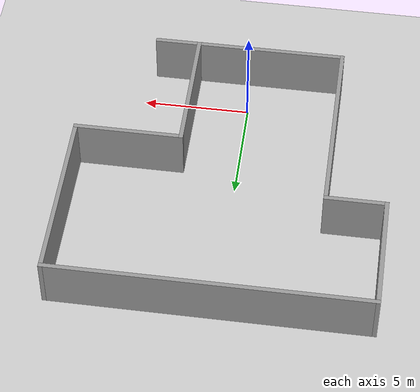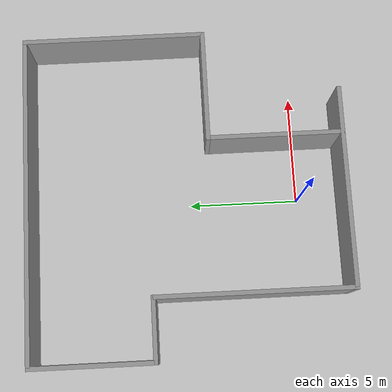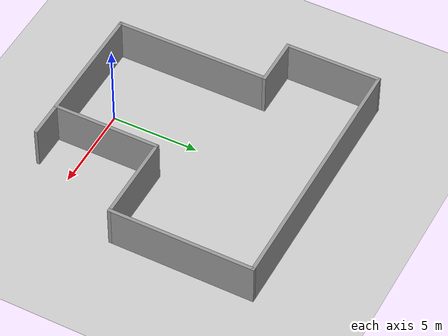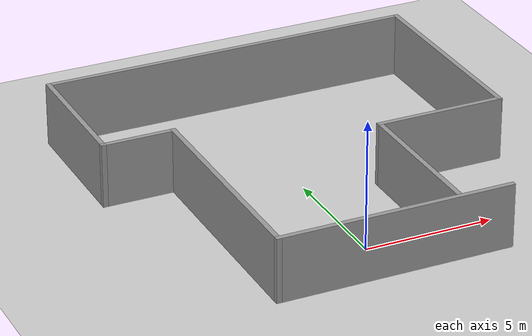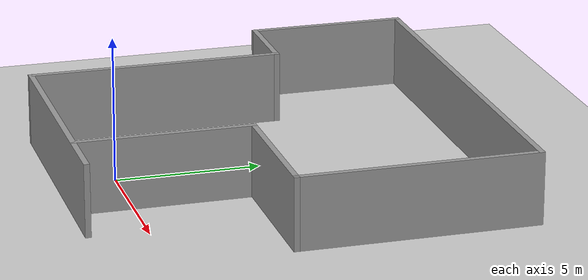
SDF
<?xml version="1.0" ?>
<sdf version='1.4'>
  <world name='default'>
    <model name='ground_plane'>
      <static>1</static>
      <link name='link'>
        <collision name='collision'>
          <geometry>
            <plane>
              <normal>0 0 1</normal>
              <size>100 100</size>
            </plane>
          </geometry>
          <surface>
            <friction>
              <ode>
                <mu>100</mu>
                <mu2>50</mu2>
              </ode>
            </friction>
            <bounce/>
            <contact>
              <ode/>
            </contact>
          </surface>
          <max_contacts>10</max_contacts>
        </collision>
        <visual name='visual'>
          <cast_shadows>0</cast_shadows>
          <geometry>
            <plane>
              <normal>0 0 1</normal>
              <size>100 100</size>
            </plane>
          </geometry>
          <material>
            <script>
              <uri>file://media/materials/scripts/gazebo.material</uri>
              <name>Gazebo/Grey</name>
            </script>
          </material>
        </visual>
        <velocity_decay>
          <linear>0</linear>
          <angular>0</angular>
        </velocity_decay>
        <self_collide>0</self_collide>
        <kinematic>0</kinematic>
        <gravity>1</gravity>
      </link>
    </model>
    <light name='sun' type='directional'>
      <cast_shadows>1</cast_shadows>
      <pose>0 0 10 0 -0 0</pose>
      <diffuse>0.8 0.8 0.8 1</diffuse>
      <specular>0.2 0.2 0.2 1</specular>
      <attenuation>
        <range>1000</range>
        <constant>0.9</constant>
        <linear>0.01</linear>
        <quadratic>0.001</quadratic>
      </attenuation>
      <direction>-0.5 0.1 -0.9</direction>
    </light>
    <physics type='ode'>
      <max_step_size>0.005</max_step_size>
      <real_time_factor>1</real_time_factor>
      <real_time_update_rate>200</real_time_update_rate>
      <gravity>0 0 -9.8</gravity>
    </physics>
    <scene>
      <ambient>0.4 0.4 0.4 1</ambient>
      <background>0.7 0.7 0.7 1</background>
      <shadows>1</shadows>
    </scene>
    <spherical_coordinates>
      <surface_model>EARTH_WGS84</surface_model>
      <latitude_deg>0</latitude_deg>
      <longitude_deg>0</longitude_deg>
      <elevation>0</elevation>
      <heading_deg>0</heading_deg>
    </spherical_coordinates>
    <gui fullscreen='0'>
      <camera name='user_camera'>
        <pose>-2.57767 -2.91132 2.87769 3.10316e-17 0.463643 0.86419</pose>
        <view_controller>orbit</view_controller>
      </camera>
    </gui>

    <include>
      <uri>model://wall4</uri>
    </include>
  </world>
</sdf>

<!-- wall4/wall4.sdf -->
<sdf version='1.4'>
  <model name='wall4'>
    <link name='Wall_31'>
      <collision name='Wall_31_Collision'>
        <geometry>
          <box>
            <size>9.19353 0.2 2.5</size>
          </box>
        </geometry>
        <pose>0 0 1.25 0 -0 0</pose>
      </collision>
      <visual name='Wall_31_Visual'>
        <pose>0 0 1.25 0 -0 0</pose>
        <geometry>
          <box>
            <size>9.19353 0.2 2.5</size>
          </box>
        </geometry>
        <material>
          <script>
            <uri>file://media/materials/scripts/gazebo.material</uri>
            <name>Gazebo/Grey</name>
          </script>
        </material>
      </visual>
      <velocity_decay>
        <linear>0</linear>
        <angular>0</angular>
      </velocity_decay>
      <pose>0.160539 -1.95625 0 0 -0 3.14159</pose>
    </link>
    <link name='Wall_32'>
      <collision name='Wall_32_Collision'>
        <geometry>
          <box>
            <size>9.00999 0.2 2.5</size>
          </box>
        </geometry>
        <pose>0 0 1.25 0 -0 0</pose>
      </collision>
      <visual name='Wall_32_Visual'>
        <pose>0 0 1.25 0 -0 0</pose>
        <geometry>
          <box>
            <size>9.00999 0.2 2.5</size>
          </box>
        </geometry>
        <material>
          <script>
            <uri>file://media/materials/scripts/gazebo.material</uri>
            <name>Gazebo/Grey</name>
          </script>
        </material>
      </visual>
      <velocity_decay>
        <linear>0</linear>
        <angular>0</angular>
      </velocity_decay>
      <pose>-4.33622 2.44874 0 0 -0 1.5708</pose>
    </link>
    <link name='Wall_33'>
      <collision name='Wall_33_Collision'>
        <geometry>
          <box>
            <size>2.95312 0.2 2.5</size>
          </box>
        </geometry>
        <pose>0 0 1.25 0 -0 0</pose>
      </collision>
      <visual name='Wall_33_Visual'>
        <pose>0 0 1.25 0 -0 0</pose>
        <geometry>
          <box>
            <size>2.95312 0.2 2.5</size>
          </box>
        </geometry>
        <material>
          <script>
            <uri>file://media/materials/scripts/gazebo.material</uri>
            <name>Gazebo/Grey</name>
          </script>
        </material>
      </visual>
      <velocity_decay>
        <linear>0</linear>
        <angular>0</angular>
      </velocity_decay>
      <pose>-5.71279 6.85374 0 0 -0 3.14159</pose>
    </link>
    <link name='Wall_34'>
      <collision name='Wall_34_Collision'>
        <geometry>
          <box>
            <size>5.61447 0.2 2.5</size>
          </box>
        </geometry>
        <pose>0 0 1.25 0 -0 0</pose>
      </collision>
      <visual name='Wall_34_Visual'>
        <pose>0 0 1.25 0 -0 0</pose>
        <geometry>
          <box>
            <size>5.61447 0.2 2.5</size>
          </box>
        </geometry>
        <material>
          <script>
            <uri>file://media/materials/scripts/gazebo.material</uri>
            <name>Gazebo/Grey</name>
          </script>
        </material>
      </visual>
      <velocity_decay>
        <linear>0</linear>
        <angular>0</angular>
      </velocity_decay>
      <pose>-7.08934 9.56097 0 0 -0 1.5708</pose>
    </link>
    <link name='Wall_35'>
      <collision name='Wall_35_Collision'>
        <geometry>
          <box>
            <size>14.8833 0.2 2.5</size>
          </box>
        </geometry>
        <pose>0 0 1.25 0 -0 0</pose>
      </collision>
      <visual name='Wall_35_Visual'>
        <pose>0 0 1.25 0 -0 0</pose>
        <geometry>
          <box>
            <size>14.8833 0.2 2.5</size>
          </box>
        </geometry>
        <material>
          <script>
            <uri>file://media/materials/scripts/gazebo.material</uri>
            <name>Gazebo/Grey</name>
          </script>
        </material>
      </visual>
      <velocity_decay>
        <linear>0</linear>
        <angular>0</angular>
      </velocity_decay>
      <pose>0.25231 12.2682 0 0 -0 0</pose>
    </link>
    <link name='Wall_36'>
      <collision name='Wall_36_Collision'>
        <geometry>
          <box>
            <size>8.36759 0.2 2.5</size>
          </box>
        </geometry>
        <pose>0 0 1.25 0 -0 0</pose>
      </collision>
      <visual name='Wall_36_Visual'>
        <pose>0 0 1.25 0 -0 0</pose>
        <geometry>
          <box>
            <size>8.36759 0.2 2.5</size>
          </box>
        </geometry>
        <material>
          <script>
            <uri>file://media/materials/scripts/gazebo.material</uri>
            <name>Gazebo/Grey</name>
          </script>
        </material>
      </visual>
      <velocity_decay>
        <linear>0</linear>
        <angular>0</angular>
      </velocity_decay>
      <pose>7.59396 8.18441 0 0 0 -1.5708</pose>
    </link>
    <link name='Wall_37'>
      <collision name='Wall_37_Collision'>
        <geometry>
          <box>
            <size>5.15562 0.2 2.5</size>
          </box>
        </geometry>
        <pose>0 0 1.25 0 -0 0</pose>
      </collision>
      <visual name='Wall_37_Visual'>
        <pose>0 0 1.25 0 -0 0</pose>
        <geometry>
          <box>
            <size>5.15562 0.2 2.5</size>
          </box>
        </geometry>
        <material>
          <script>
            <uri>file://media/materials/scripts/gazebo.material</uri>
            <name>Gazebo/Grey</name>
          </script>
        </material>
      </visual>
      <velocity_decay>
        <linear>0</linear>
        <angular>0</angular>
      </velocity_decay>
      <pose>5.11616 4.10062 0 0 -0 3.14159</pose>
    </link>
    <link name='Wall_38'>
      <collision name='Wall_38_Collision'>
        <geometry>
          <box>
            <size>6.25687 0.2 2.5</size>
          </box>
        </geometry>
        <pose>0 0 1.25 0 -0 0</pose>
      </collision>
      <visual name='Wall_38_Visual'>
        <pose>0 0 1.25 0 -0 0</pose>
        <geometry>
          <box>
            <size>6.25687 0.2 2.5</size>
          </box>
        </geometry>
        <material>
          <script>
            <uri>file://media/materials/scripts/gazebo.material</uri>
            <name>Gazebo/Grey</name>
          </script>
        </material>
      </visual>
      <velocity_decay>
        <linear>0</linear>
        <angular>0</angular>
      </velocity_decay>
      <pose>2.63835 1.07218 0 0 0 -1.5708</pose>
    </link>
    <static>1</static>
  </model>
</sdf>
